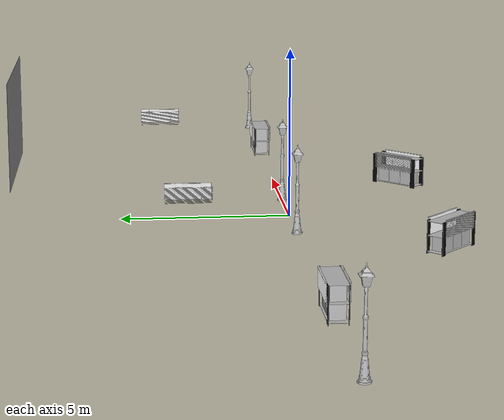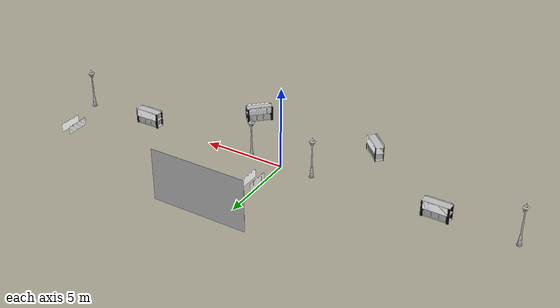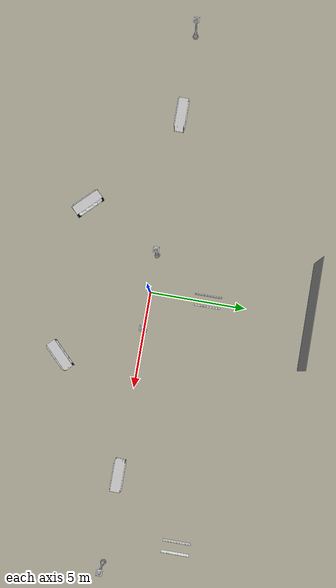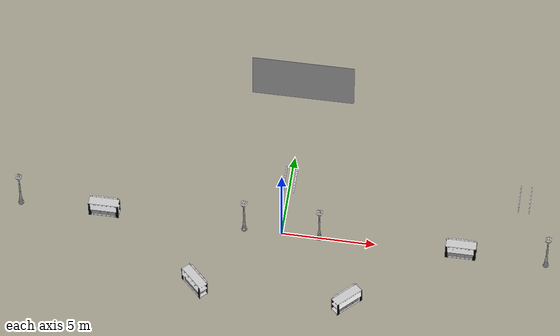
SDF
<sdf version="1.10">
 <world name="default">
  <physics type="ode">
   <max_step_size>0.0040000000000000001</max_step_size>
   <real_time_factor>1</real_time_factor>
   <real_time_update_rate>250</real_time_update_rate>
  </physics>
  <plugin name="gz::sim::systems::Physics" filename="gz-sim-physics-system"/>
  <plugin name="gz::sim::systems::UserCommands" filename="gz-sim-user-commands-system"/>
  <plugin name="gz::sim::systems::SceneBroadcaster" filename="gz-sim-scene-broadcaster-system"/>
  <plugin name="gz::sim::systems::Contact" filename="gz-sim-contact-system"/>
  <plugin name="gz::sim::systems::Imu" filename="gz-sim-imu-system"/>
  <plugin name="gz::sim::systems::Magnetometer" filename="gz-sim-magnetometer-system"/>
  <plugin name="gz::sim::systems::Altimeter" filename="gz-sim-altimeter-system"/>
  <plugin name="gz::sim::systems::NavSat" filename="gz-sim-navsat-system"/>
  <plugin name="gz::sim::systems::Sensors" filename="gz-sim-sensors-system">
   <render_engine>ogre2</render_engine>
  </plugin>
  <gravity>0 0 -9.8000000000000007</gravity>
  <magnetic_field>6.0000000000000002e-06 2.3e-05 -4.1999999999999998e-05</magnetic_field>
  <atmosphere type="adiabatic"/>
  <spherical_coordinates>
   <surface_model>EARTH_WGS84</surface_model>
   <latitude_deg>39.79480109851339</latitude_deg>
   <longitude_deg>-84.08631702793322</longitude_deg>
   <elevation>265.2</elevation>
   <heading_deg>0</heading_deg>
  </spherical_coordinates>
  <scene><grid>false</grid></scene>
  <model name="street_1">
   <static>true</static>
   <link name="main">
    <collision name="collision">
     <pose>2 0 0 0 0 0</pose>
     <geometry><mesh><scale>0.75 0.75 0.75</scale><uri>street.dae</uri></mesh></geometry>
    </collision>
    <visual name="objects">
     <pose>2 0 0 0 0 0</pose>
     <geometry><mesh><scale>0.75 0.75 0.75</scale><uri>street.dae</uri></mesh></geometry>
    </visual>
   </link>
  </model>
  <model name="street_2">
   <static>true</static>
   <link name="main">
    <collision name="collision">
     <pose>-2 0 0 0 0 0</pose>
     <geometry><mesh><scale>0.75 0.75 0.75</scale><uri>street.dae</uri></mesh></geometry>
    </collision>
    <visual name="objects">
     <pose>-2 0 0 0 0 0</pose>
     <geometry><mesh><scale>0.75 0.75 0.75</scale><uri>street.dae</uri></mesh></geometry>
    </visual>
   </link>
  </model>
  <model name="street_end_1">
   <static>true</static>
   <link name="main">
    <collision name="collision">
     <pose>-14 0 0 0 0 0</pose>
     <geometry><mesh><scale>0.75 0.75 0.75</scale><uri>street.dae</uri></mesh></geometry>
    </collision>
    <visual name="objects">
     <pose>-14 0 0 0 0 0</pose>
     <geometry><mesh><scale>0.75 0.75 0.75</scale><uri>street.dae</uri></mesh></geometry>
    </visual>
   </link>
  </model>
  <model name="street_end_2">
   <static>true</static>
   <link name="main">
    <collision name="collision">
     <pose>14 0 0 0 0 0</pose>
     <geometry><mesh><scale>0.75 0.75 0.75</scale><uri>street.dae</uri></mesh></geometry>
    </collision>
    <visual name="objects">
     <pose>14 0 0 0 0 0</pose>
     <geometry><mesh><scale>0.75 0.75 0.75</scale><uri>street.dae</uri></mesh></geometry>
    </visual>
   </link>
  </model>
  <model name="curtain_1">
   <static>true</static>
   <link name="main">
    <visual name="objects">
     <pose>-4 -4 0 0 0 0.78539816339</pose>
     <geometry><mesh><uri>curtain.dae</uri></mesh></geometry>
    </visual>
   </link>
  </model>
  <model name="rack_three_diverse_1">
   <static>true</static>
   <link name="main">
    <collision name="collision">
     <pose>-4 -4 0 0 0 0.78539816339</pose>
     <geometry><mesh><uri>rack_three_diverse_1.dae</uri></mesh></geometry>
    </collision>
    <visual name="objects">
     <pose>-4 -4 0 0 0 0.78539816339</pose>
     <geometry><mesh><uri>rack_three_diverse_1.dae</uri></mesh></geometry>
    </visual>
   </link>
  </model>
  <model name="curtain_3">
   <static>true</static>
   <link name="main">
    <visual name="objects">
     <pose>4 -4 0 0 0 -0.78539816339</pose>
     <geometry><mesh><uri>curtain.dae</uri></mesh></geometry>
    </visual>
   </link>
  </model>
  <model name="rack_three_diverse_3">
   <static>true</static>
   <link name="main">
    <collision name="collision">
     <pose>4 -4 0 0 0 -0.78539816339</pose>
     <geometry><mesh><uri>rack_three_diverse_3.dae</uri></mesh></geometry>
    </collision>
    <visual name="objects">
     <pose>4 -4 0 0 0 -0.78539816339</pose>
     <geometry><mesh><uri>rack_three_diverse_3.dae</uri></mesh></geometry>
    </visual>
   </link>
  </model>
  <model name="curtain_8">
   <static>true</static>
   <link name="main">
    <visual name="objects">
     <pose>0 3.0 0 0 0 0</pose>
     <geometry><mesh><uri>curtain.dae</uri></mesh></geometry>
    </visual>
   </link>
  </model>
  <model name="curtain_6">
   <static>true</static>
   <link name="main">
    <visual name="objects">
     <pose>12.5 3.5 0 0 0 0</pose>
     <geometry><mesh><uri>curtain.dae</uri></mesh></geometry>
    </visual>
   </link>
  </model>
  <model name="rack_three_diverse_11">
   <static>true</static>
   <link name="main">
    <collision name="collision">
     <pose>-9.5 0 0 0 0 1.57079632679</pose>
     <geometry><mesh><uri>rack_three_diverse_11.dae</uri></mesh></geometry>
    </collision>
    <visual name="objects">
     <pose>-9.5 0 0 0 0 1.57079632679</pose>
     <geometry><mesh><uri>rack_three_diverse_11.dae</uri></mesh></geometry>
    </visual>
   </link>
  </model>
  <model name="curtain_11">
   <static>true</static>
   <link name="main">
    <visual name="objects">
     <pose>-9.5 0 0 0 0 1.57079632679</pose>
     <geometry><mesh><uri>curtain.dae</uri></mesh></geometry>
    </visual>
   </link>
  </model>
  <model name="rack_three_diverse_12">
   <static>true</static>
   <link name="main">
    <collision name="collision">
     <pose>9.5 0 0 0 0 1.57079632679</pose>
     <geometry><mesh><uri>rack_three_diverse_12.dae</uri></mesh></geometry>
    </collision>
    <visual name="objects">
     <pose>9.5 0 0 0 0 1.57079632679</pose>
     <geometry><mesh><uri>rack_three_diverse_12.dae</uri></mesh></geometry>
    </visual>
   </link>
  </model>
  <model name="curtain_12">
   <static>true</static>
   <link name="main">
    <visual name="objects">
     <pose>9.5 0 0 0 0 1.57079632679</pose>
     <geometry><mesh><uri>curtain.dae</uri></mesh></geometry>
    </visual>
   </link>
  </model>
  <model name="nxp">
   <static>true</static>
   <link name="main">
    <visual name="objects">
     <pose>0 8.0 3 0 0 -1.57079632679</pose>
     <geometry><mesh><scale>5 5 5</scale><uri>nxp.dae</uri></mesh></geometry>
    </visual>
   </link>
   <joint name="world_joint" type="fixed"><parent>world</parent><child>main</child></joint>
  </model>
 </world>
</sdf>
